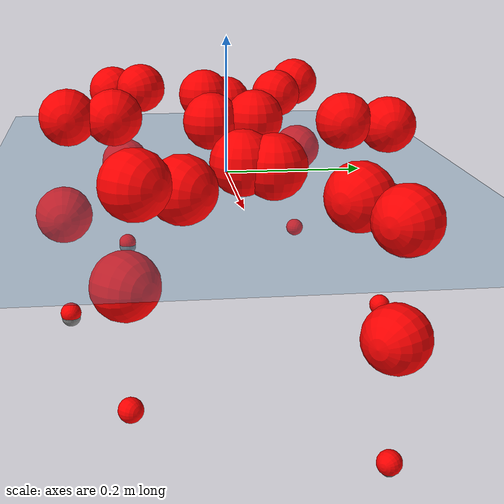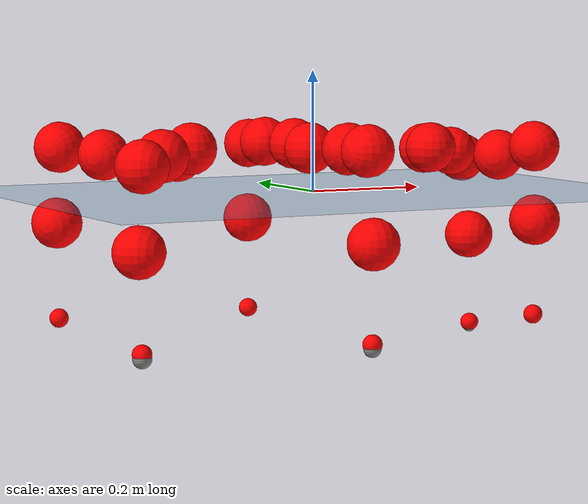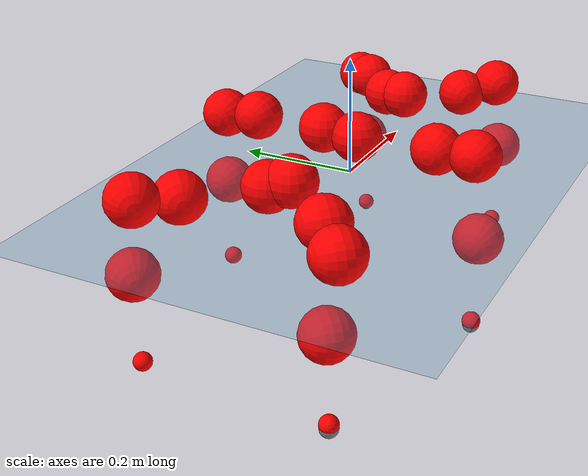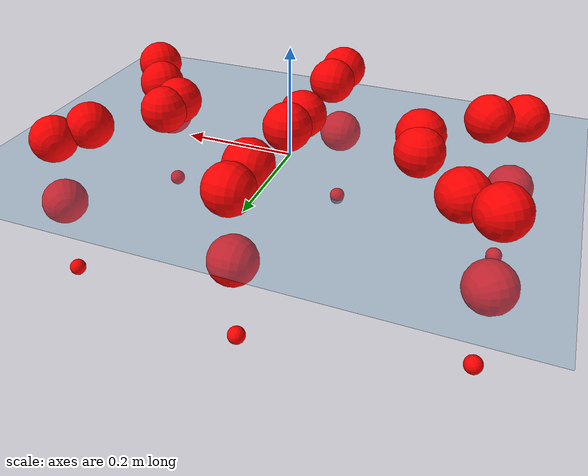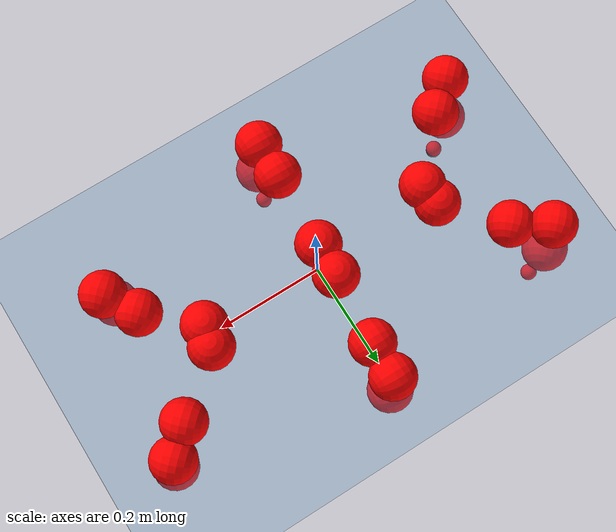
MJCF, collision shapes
<mujoco model="Golem">
  <compiler angle="radian" assetdir="assets" balanceinertia="true" inertiafromgeom="false"/>

  <option timestep="0.005" density="1.2" viscosity="2e-05"/>

  <size nkey="1"/>

  <visual>
    <quality shadowsize="8192"/>
    <map shadowclip="0.5"/>
  </visual>

  <default>
    <default class="/">
      <joint armature="0.01" damping="0.01" frictionloss="0.01"/>
      <geom contype="0" conaffinity="0" group="1" solref="-1000 -80"/>
      <site size="0.01 0.005 0.005" group="5"/>
      <general forcelimited="true" biastype="affine" gainprm="25" biasprm="0 -25 -0.5"/>
      <default class="visual">
        <geom type="mesh" group="2"/>
      </default>
      <default class="collision">
        <geom group="3"/>
      </default>
      <default class="foot">
        <geom size="0.01 0 0" condim="6" group="4" priority="1" solimp="0.015 1 0.01"/>
      </default>
      <default class="reward_collision_sphere">
        <geom group="5" rgba="1 0 0 1"/>
      </default>
    </default>
  </default>

  <asset>
    <texture type="skybox" colorspace="auto" name="//unnamed_texture_0" builtin="gradient" rgb1="0.95 0.95 0.95" rgb2="0.95 0.95 0.95" width="100" height="600"/>
    <texture type="2d" colorspace="auto" name="texplane" builtin="checker" rgb1="0.345 0.575 0.748" rgb2="0.345 0.575 0.748" markrgb="1 1 1" width="512" height="512"/>
    <material name="MatPlane" class="/" texture="texplane" texuniform="true" texrepeat="2 2" specular="0.9"/>
    <mesh name="body" class="/" file="body.stl" scale="0.001 0.001 0.001"/>
    <mesh name="coxa" class="/" file="coxa.stl" scale="0.001 0.001 0.001"/>
    <mesh name="femur" class="/" file="femur.stl" scale="0.001 0.001 0.001"/>
    <mesh name="tibia" class="/" file="tibia.stl" scale="0.001 0.001 0.001"/>
    <mesh name="tarsus" class="/" file="tarsus.stl" scale="0.001 0.001 0.001"/>
  </asset>

  <worldbody>
    <geom name="floor" class="/" size="100 100 0.125" type="plane" group="0" material="MatPlane"/>
    <light name="toplight_shadow" class="/" pos="0 0 5" dir="0.0990148 0.0990148 -0.990148" type="directional" ambient="0.04 0.04 0.04" diffuse="0.55 0.55 0.55" specular="0.12 0.12 0.12"/>
    <light name="toplight_fill" class="/" pos="0 0 5" dir="0.0990148 0.0990148 -0.990148" type="directional" castshadow="false" ambient="0.04 0.04 0.04" diffuse="0.3 0.3 0.3" specular="0.08 0.08 0.08"/>
    <body name="trunk" pos="6.39682e-05 0.0040211 0.0105114" quat="0.99998 0.00316111 0.000707023 -0.00535697">
      <inertial pos="-0.00756748 0.00757812 -0.0108625" quat="0.999475 0.0183784 0.0212805 0.0160999" mass="5.62558" diaginertia="0.0799944 0.00111075 0.0141918"/>
      <joint name="//unnamed_joint_0" type="free"/>
      <geom name="//unnamed_geom_1" class="/" pos="0 0 0.0688061" quat="1 0 0 0" type="mesh" rgba="0.9 0.9 0.9 1" mesh="body"/>
      <site name="imu" class="/" pos="0.219274 -0.0645124 0.0282898" size="0.0105541"/>
      <camera name="track" class="/" pos="0 -1.23732 0" quat="0.707107 0.707107 0 0" mode="trackcom"/>
      <camera name="ego_camera" class="/" pos="0.191423 0 0.107509" quat="-0.5 -0.5 0.5 0.5"/>
      <body name="coxa_RR" pos="-0.258646 -0.0490195 0.0675132" quat="0.377603 0.00592459 -0.00104102 -0.925948">
        <inertial pos="-0.0116795 -0.00622305 0.00940513" quat="0.999219 0.0232001 -0.00299565 0.0318609" mass="0.209537" diaginertia="0.0796345 0.000800311 0.0121664"/>
        <joint name="coxa_joint_RR" class="/" pos="0 0 0" axis="-0.0110346 -0.0348213 -0.999333" range="-3.29505 3.26232" armature="0.00914115" damping="0.0308674" frictionloss="0.00679324"/>
        <geom name="//unnamed_geom_2" class="/" type="mesh" rgba="0.2 0.2 0.2 1" mesh="coxa"/>
        <geom name="//unnamed_geom_3" class="reward_collision_sphere" size="0.0422165" pos="-0.0441746 0 0"/>
        <body name="femur_RR" pos="0.0972949 0.00800254 -1.38862e-05" quat="0.503524 -0.496661 0.496019 0.503743">
          <inertial pos="0.000728352 -0.0156079 -0.00909551" quat="0.998673 -0.0150161 -0.0437183 -0.0226956" mass="0.267458" diaginertia="0.0710539 0.00117057 0.016628"/>
          <joint name="femur_joint_RR" class="/" pos="0 0 0" axis="-0.0187296 0.00369665 -0.999818" range="-3.26864 3.2693" armature="0.00422299" damping="0" frictionloss="0.0109874"/>
          <geom name="//unnamed_geom_4" class="/" type="mesh" rgba="0.9 0.9 0.9 1" mesh="femur"/>
          <geom name="//unnamed_geom_5" class="reward_collision_sphere" size="0.0422165"/>
          <body name="tibia_RR" pos="0.0101952 -0.0743292 -0.00302798" quat="6.7128e-06 1 0.000167702 0.000746388">
            <inertial pos="-0.00026813 -0.0145717 -0.00439693" quat="0.999998 0.00134646 -0.000800824 -0.00154179" mass="0.273083" diaginertia="0.0808145 0.00104589 0.0169221"/>
            <joint name="tibia_joint_RR" class="/" pos="0 0 0" axis="0.0431439 -0.0560997 0.997493" stiffness="0.0557038" range="-3.43271 3.0433" armature="0.0160224" damping="0.0482168" frictionloss="0.00185497"/>
            <geom name="//unnamed_geom_6" class="/" type="mesh" rgba="0.2 0.2 0.2 1" mesh="tibia"/>
            <geom name="//unnamed_geom_7" class="reward_collision_sphere" size="0.0422165"/>
            <body name="tarsus_RR" pos="0.133129 -0.0118983 0.0141777" quat="0.99999 -0.00358479 0.00110616 -0.00260101">
              <inertial pos="0.0802799 0.00462011 -0.0112104" quat="0.466016 0.494906 0.51657 0.520628" mass="0.277739" diaginertia="0.0769431 0.00113945 0.0133748"/>
              <joint name="tarsus_joint_RR" class="/" pos="0 0 0" axis="0.0162404 0.0498872 0.998623" range="-2.9519 3.1918" armature="0.0144111" damping="0" frictionloss="0.00877213"/>
              <geom name="//unnamed_geom_8" class="/" type="mesh" rgba="0.9 0.9 0.9 1" mesh="tarsus"/>
              <geom name="foot_1" class="foot" size="0.0155805" pos="0.164919 0 0" quat="0 -0.707107 0 0.707107"/>
              <geom name="//unnamed_geom_10" class="reward_collision_sphere" size="0.0422165"/>
              <geom name="//unnamed_geom_11" class="reward_collision_sphere" size="0.0158312" pos="0.158292 0 0"/>
              <site name="foot_1" class="foot" pos="0.164919 0 0" quat="0 -0.707107 0 0.707107" size="0.0105541"/>
            </body>
          </body>
        </body>
      </body>
      <body name="coxa_RM" pos="-0.0161323 -0.0680154 0.0633166" quat="0.707976 0.00206624 0.00101115 -0.706233">
        <inertial pos="-0.00219966 0.000526961 0.0130627" quat="0.996883 -0.00586276 0.00210462 0.0786452" mass="0.208804" diaginertia="0.0540694 0.000591224 0.00977868"/>
        <joint name="coxa_joint_RM" class="/" pos="0 0 0" axis="-0.0398072 0.0647489 -0.997107" stiffness="0.0426325" range="-3.15494 3.32057" armature="0.0135333" damping="0" frictionloss="0.0049339"/>
        <geom name="//unnamed_geom_12" class="/" type="mesh" rgba="0.2 0.2 0.2 1" mesh="coxa"/>
        <geom name="//unnamed_geom_13" class="reward_collision_sphere" size="0.0422165" pos="-0.0441746 0 0"/>
        <body name="femur_RM" pos="0.0994311 -0.00474639 0.0088858" quat="0.499886 -0.500531 0.5003 0.499283">
          <inertial pos="-0.000908563 -0.0115747 -0.000271723" quat="0.999802 -0.0133909 -0.0146197 0.00152499" mass="0.208825" diaginertia="0.0809352 0.000922928 0.0159741"/>
          <joint name="femur_joint_RM" class="/" pos="0 0 0" axis="0.000799017 0.00399562 -0.999992" stiffness="0.0595011" range="-3.39106 2.96445" armature="0.00485018" damping="0.0086515" frictionloss="0.00327429"/>
          <geom name="//unnamed_geom_14" class="/" type="mesh" rgba="0.9 0.9 0.9 1" mesh="femur"/>
          <geom name="//unnamed_geom_15" class="reward_collision_sphere" size="0.0422165"/>
          <body name="tibia_RM" pos="-0.00163439 -0.0664009 -0.000909763" quat="-0.00142878 0.999999 -0.000220653 0.000151545">
            <inertial pos="-0.00219495 0.000520699 -0.0120084" quat="0.999741 0.00294924 -0.0180646 -0.01351" mass="0.193063" diaginertia="0.0705663 0.000909363 0.0159947"/>
            <joint name="tibia_joint_RM" class="/" pos="0 0 0" axis="0.0607899 -0.0393315 0.997375" range="-3.29303 2.91922" armature="0.0184352" damping="0.00130698" frictionloss="0.00290132"/>
            <geom name="//unnamed_geom_16" class="/" type="mesh" rgba="0.2 0.2 0.2 1" mesh="tibia"/>
            <geom name="//unnamed_geom_17" class="reward_collision_sphere" size="0.0422165"/>
            <body name="tarsus_RM" pos="0.146001 0.013007 -0.00489157" quat="0.999984 -0.00387217 0.000579498 -0.00409472">
              <inertial pos="0.0886495 0.00320219 -0.000747302" quat="0.500966 0.50113 0.496383 0.501504" mass="0.164003" diaginertia="0.0581646 0.000743866 0.0117049"/>
              <joint name="tarsus_joint_RM" class="/" pos="0 0 0" axis="0.0215689 0.0304461 0.999304" range="-3.281 3.23345" armature="0.0149227" damping="0" frictionloss="0.00786524"/>
              <geom name="//unnamed_geom_18" class="/" type="mesh" rgba="0.9 0.9 0.9 1" mesh="tarsus"/>
              <geom name="foot_2" class="foot" size="0.014526" pos="0.164919 0 0" quat="0 -0.707107 0 0.707107"/>
              <geom name="//unnamed_geom_20" class="reward_collision_sphere" size="0.0422165"/>
              <geom name="//unnamed_geom_21" class="reward_collision_sphere" size="0.0158312" pos="0.158292 0 0"/>
              <site name="foot_2" class="foot" pos="0.164919 0 0" quat="0 -0.707107 0 0.707107" size="0.0105541"/>
            </body>
          </body>
        </body>
      </body>
      <body name="coxa_RF" pos="0.254461 -0.0366928 0.0566606" quat="0.923834 -5.18324e-05 -0.000269408 -0.382793">
        <inertial pos="0.0148594 -0.00253344 0.0119227" quat="0.998695 -0.0495231 -0.000113476 0.0124928" mass="0.221845" diaginertia="0.0546456 0.000686162 0.0118804"/>
        <joint name="coxa_joint_RF" class="/" pos="0 0 0" axis="0.0141259 -0.0207078 -0.999686" stiffness="0.0613071" range="-3.18525 3.34557" armature="0.0125229" damping="0" frictionloss="0.00318904"/>
        <geom name="//unnamed_geom_22" class="/" type="mesh" rgba="0.2 0.2 0.2 1" mesh="coxa"/>
        <geom name="//unnamed_geom_23" class="reward_collision_sphere" size="0.0422165" pos="-0.0441746 0 0"/>
        <body name="femur_RF" pos="0.0731658 0.00332348 -0.00948488" quat="0.50367 -0.496659 0.502517 0.497116">
          <inertial pos="-0.00371084 -0.00113332 0.0052066" quat="0.998928 0.0441329 -0.00852888 -0.0111053" mass="0.226426" diaginertia="0.0772902 0.00106329 0.0162535"/>
          <joint name="femur_joint_RF" class="/" pos="0 0 0" axis="-0.0214455 0.0262426 -0.999426" range="-3.30502 3.14867" armature="0.00841308" damping="0.0152755" frictionloss="0.00884945"/>
          <geom name="//unnamed_geom_24" class="/" type="mesh" rgba="0.9 0.9 0.9 1" mesh="femur"/>
          <geom name="//unnamed_geom_25" class="reward_collision_sphere" size="0.0422165"/>
          <body name="tibia_RF" pos="-0.016707 -0.0639591 -0.0129323" quat="-0.00217976 0.999993 0.0025695 0.00136026">
            <inertial pos="-0.00130953 0.0142781 0.0124446" quat="0.99762 0.0244303 -0.0218298 -0.060673" mass="0.254936" diaginertia="0.0906075 0.0011561 0.0139602"/>
            <joint name="tibia_joint_RF" class="/" pos="0 0 0" axis="-0.0575834 -0.0372839 0.997644" stiffness="0.0802714" range="-2.96568 3.09936" armature="0.00960868" damping="0.0407147" frictionloss="0.0157634"/>
            <geom name="//unnamed_geom_26" class="/" type="mesh" rgba="0.2 0.2 0.2 1" mesh="tibia"/>
            <geom name="//unnamed_geom_27" class="reward_collision_sphere" size="0.0422165"/>
            <body name="tarsus_RF" pos="0.121508 0.00634624 0.0153203" quat="1 0.000111885 -0.000148345 6.98989e-05">
              <inertial pos="0.0831943 -0.00409571 0.00285146" quat="0.490772 0.479156 0.502831 0.526036" mass="0.253414" diaginertia="0.084426 0.00116257 0.0151188"/>
              <joint name="tarsus_joint_RF" class="/" pos="0 0 0" axis="-0.0348844 0.0712468 0.996849" range="-3.06558 3.23551" armature="0.0144364" damping="0.0116352" frictionloss="0.00553061"/>
              <geom name="//unnamed_geom_28" class="/" type="mesh" rgba="0.9 0.9 0.9 1" mesh="tarsus"/>
              <geom name="foot_3" class="foot" size="0.0071723" pos="0.164919 0 0" quat="0 -0.707107 0 0.707107"/>
              <geom name="//unnamed_geom_30" class="reward_collision_sphere" size="0.0422165"/>
              <geom name="//unnamed_geom_31" class="reward_collision_sphere" size="0.0158312" pos="0.158292 0 0"/>
              <site name="foot_3" class="foot" pos="0.164919 0 0" quat="0 -0.707107 0 0.707107" size="0.0105541"/>
            </body>
          </body>
        </body>
      </body>
      <body name="coxa_LR" pos="-0.266277 0.0496897 0.053936" quat="0.379801 -0.00470184 0.0036021 0.925049">
        <inertial pos="0.00871574 -0.0125292 0.0132532" quat="0.999731 0.0036948 -0.0228079 -0.00180217" mass="0.227707" diaginertia="0.0705957 0.000972262 0.0134968"/>
        <joint name="coxa_joint_LR" class="/" pos="0 0 0" axis="0.00582997 -0.0593043 -0.998223" range="-2.97494 2.85719" armature="0.0105222" damping="0" frictionloss="0.00454597"/>
        <geom name="//unnamed_geom_32" class="/" type="mesh" rgba="0.2 0.2 0.2 1" mesh="coxa"/>
        <geom name="//unnamed_geom_33" class="reward_collision_sphere" size="0.0422165" pos="-0.0441746 0 0"/>
        <body name="femur_LR" pos="0.0888188 -0.00915905 -0.00135972" quat="0.498764 -0.497998 0.502846 0.500378">
          <inertial pos="-0.00285674 -0.0112784 -0.0063972" quat="0.997213 0.0410488 -0.00871545 0.0616876" mass="0.276491" diaginertia="0.0628328 0.00104132 0.0173219"/>
          <joint name="femur_joint_LR" class="/" pos="0 0 0" axis="0.0817302 0.0213974 0.996425" range="-2.96867 2.99299" armature="0.00263346" damping="0" frictionloss="0.0100523"/>
          <geom name="//unnamed_geom_34" class="/" type="mesh" rgba="0.9 0.9 0.9 1" mesh="femur"/>
          <geom name="//unnamed_geom_35" class="reward_collision_sphere" size="0.0422165"/>
          <body name="tibia_LR" pos="-0.0128119 -0.0724419 0.0117493" quat="0.00269517 0.999994 -0.00010536 -0.00211887">
            <inertial pos="0.00894937 -0.00679181 -0.0123102" quat="0.998466 -0.0247308 -0.0436936 0.0233595" mass="0.182102" diaginertia="0.0611512 0.000761227 0.014747"/>
            <joint name="tibia_joint_LR" class="/" pos="0 0 0" axis="0.00457569 0.00931354 -0.999946" range="-3.43884 2.90961" armature="0.0176676" damping="0" frictionloss="0.0107056"/>
            <geom name="//unnamed_geom_36" class="/" type="mesh" rgba="0.2 0.2 0.2 1" mesh="tibia"/>
            <geom name="//unnamed_geom_37" class="reward_collision_sphere" size="0.0422165"/>
            <body name="tarsus_LR" pos="0.125565 0.00916579 0.00352464" quat="1 6.85578e-06 -0.000137654 0.000105988">
              <inertial pos="0.0902401 0.0135197 -0.00450161" quat="0.49638 0.500049 0.501698 0.501854" mass="0.300043" diaginertia="0.0746513 0.000780273 0.0137696"/>
              <joint name="tarsus_joint_LR" class="/" pos="0 0 0" axis="-0.00420053 -0.00144823 -0.99999" range="-3.04507 2.93797" armature="0.0112422" damping="0.0407281" frictionloss="0.0157537"/>
              <geom name="//unnamed_geom_38" class="/" type="mesh" rgba="0.9 0.9 0.9 1" mesh="tarsus"/>
              <geom name="foot_4" class="foot" size="0.00664667" pos="0.164919 0 0" quat="0.707107 0 -0.707107 0"/>
              <geom name="//unnamed_geom_40" class="reward_collision_sphere" size="0.0422165"/>
              <geom name="//unnamed_geom_41" class="reward_collision_sphere" size="0.0158312" pos="0.158292 0 0"/>
              <site name="foot_4" class="foot" pos="0.164919 0 0" quat="0.707107 0 -0.707107 0" size="0.0105541"/>
            </body>
          </body>
        </body>
      </body>
      <body name="coxa_LM" pos="-0.0126283 0.0837091 0.066801" quat="0.708753 -0.000707544 0.00134933 0.705455">
        <inertial pos="1.61597e-05 -0.0015226 0.0147053" quat="0.999764 -0.0139207 0.0114082 0.0121561" mass="0.238501" diaginertia="0.0575055 0.000844182 0.0132472"/>
        <joint name="coxa_joint_LM" class="/" pos="0 0 0" axis="0.0458894 -0.0085201 -0.99891" range="-3.05519 3.16235" armature="0.0067169" damping="0.064939" frictionloss="0.0103152"/>
        <geom name="//unnamed_geom_42" class="/" type="mesh" rgba="0.2 0.2 0.2 1" mesh="coxa"/>
        <geom name="//unnamed_geom_43" class="reward_collision_sphere" size="0.0422165" pos="-0.0441746 0 0"/>
        <body name="femur_LM" pos="0.0888193 -0.00921468 -0.00505847" quat="0.500019 -0.500372 0.500393 0.499216">
          <inertial pos="0.011555 0.00224335 0.0161737" quat="0.998275 -0.00687424 -0.0326387 -0.0483097" mass="0.24598" diaginertia="0.0760612 0.00095809 0.0155845"/>
          <joint name="femur_joint_LM" class="/" pos="0 0 0" axis="0.0215304 -0.0412653 0.998916" range="-3.24829 3.45429" armature="0.0153512" damping="0.0101483" frictionloss="0.0173856"/>
          <geom name="//unnamed_geom_44" class="/" type="mesh" rgba="0.9 0.9 0.9 1" mesh="femur"/>
          <geom name="//unnamed_geom_45" class="reward_collision_sphere" size="0.0422165"/>
          <body name="tibia_LM" pos="0.00704545 -0.0662693 -0.000672439" quat="-0.0033788 0.99999 0.001546 -0.00239803">
            <inertial pos="-0.00809321 -0.000557116 -0.000274311" quat="0.999789 -0.00767411 -0.0163208 0.00981263" mass="0.250199" diaginertia="0.0839958 0.00109219 0.0172806"/>
            <joint name="tibia_joint_LM" class="/" pos="0 0 0" axis="-0.0433323 0.0479686 -0.997908" range="-3.39215 3.31965" armature="0.00211852" damping="0.0425711" frictionloss="0.00395153"/>
            <geom name="//unnamed_geom_46" class="/" type="mesh" rgba="0.2 0.2 0.2 1" mesh="tibia"/>
            <geom name="//unnamed_geom_47" class="reward_collision_sphere" size="0.0422165"/>
            <body name="tarsus_LM" pos="0.130372 0.00097826 -0.00185795" quat="1 -6.85508e-07 8.51452e-07 3.4389e-08">
              <inertial pos="0.0966405 0.00762964 -0.000403611" quat="0.503279 0.532521 0.470599 0.491598" mass="0.286743" diaginertia="0.0893454 0.00132179 0.0188255"/>
              <joint name="tarsus_joint_LM" class="/" pos="0 0 0" axis="-0.00907298 0.0480034 -0.998806" range="-3.1507 3.12907" armature="0.0135144" damping="0" frictionloss="0.00232135"/>
              <geom name="//unnamed_geom_48" class="/" type="mesh" rgba="0.9 0.9 0.9 1" mesh="tarsus"/>
              <geom name="foot_5" class="foot" size="0.00676962" pos="0.164919 0 0" quat="0.707107 0 -0.707107 0"/>
              <geom name="//unnamed_geom_50" class="reward_collision_sphere" size="0.0422165"/>
              <geom name="//unnamed_geom_51" class="reward_collision_sphere" size="0.0158312" pos="0.158292 0 0"/>
              <site name="foot_5" class="foot" pos="0.164919 0 0" quat="0.707107 0 -0.707107 0" size="0.0105541"/>
            </body>
          </body>
        </body>
      </body>
      <body name="coxa_LF" pos="0.262874 0.064098 0.052524" quat="0.92344 -0.00268487 -0.00143641 0.38373">
        <inertial pos="0.0145374 0.0162766 0.0110618" quat="0.999535 -0.0299767 0.00429126 0.00368896" mass="0.274293" diaginertia="0.0797501 0.00125619 0.0140878"/>
        <joint name="coxa_joint_LF" class="/" pos="0 0 0" axis="0.0541201 0.048627 -0.99735" stiffness="0.00682765" range="-2.94924 3.15714" armature="0.00750422" damping="0" frictionloss="0.0168122"/>
        <geom name="//unnamed_geom_52" class="/" type="mesh" rgba="0.2 0.2 0.2 1" mesh="coxa"/>
        <geom name="//unnamed_geom_53" class="reward_collision_sphere" size="0.0422165" pos="-0.0441746 0 0"/>
        <body name="femur_LF" pos="0.0882251 -0.0140078 -0.0134729" quat="0.497227 -0.498641 0.504823 0.499276">
          <inertial pos="0.000945627 0.00979706 -0.00636175" quat="0.99999 -0.00246153 0.0028787 -0.00230033" mass="0.253151" diaginertia="0.0962122 0.0010654 0.016865"/>
          <joint name="femur_joint_LF" class="/" pos="0 0 0" axis="-0.00604627 -0.0706037 0.997486" range="-2.96962 2.89646" armature="0.00799816" damping="0.000891553" frictionloss="0.01104"/>
          <geom name="//unnamed_geom_54" class="/" type="mesh" rgba="0.9 0.9 0.9 1" mesh="femur"/>
          <geom name="//unnamed_geom_55" class="reward_collision_sphere" size="0.0422165"/>
          <body name="tibia_LF" pos="0.0151939 -0.0646168 -0.00235337" quat="0.000690604 0.999989 -0.00361146 -0.00274176">
            <inertial pos="-0.0101007 -0.0139839 0.0090824" quat="0.999935 0.0112677 -0.00117033 0.00140403" mass="0.218753" diaginertia="0.083983 0.000983966 0.0172144"/>
            <joint name="tibia_joint_LF" class="/" pos="0 0 0" axis="0.00501697 0.0526075 -0.998603" stiffness="0.0716232" range="-3.18489 3.38313" armature="0.0139247" damping="0.0512731" frictionloss="0.00748044"/>
            <geom name="//unnamed_geom_56" class="/" type="mesh" rgba="0.2 0.2 0.2 1" mesh="tibia"/>
            <geom name="//unnamed_geom_57" class="reward_collision_sphere" size="0.0422165"/>
            <body name="tarsus_LF" pos="0.138212 0.000892456 0.0120141" quat="1 -3.35592e-05 0.00019363 -0.000115111">
              <inertial pos="0.104872 -0.00512168 0.00580705" quat="0.469176 0.525127 0.44765 0.551112" mass="0.255895" diaginertia="0.0667794 0.00089353 0.0147963"/>
              <joint name="tarsus_joint_LF" class="/" pos="0 0 0" axis="-0.0819117 0.0214912 -0.996408" range="-3.31239 3.36542" armature="0.0116168" damping="0.0651729" frictionloss="0.0149591"/>
              <geom name="//unnamed_geom_58" class="/" type="mesh" rgba="0.9 0.9 0.9 1" mesh="tarsus"/>
              <geom name="foot_6" class="foot" size="0.011093" pos="0.164919 0 0" quat="0.707107 0 -0.707107 0"/>
              <geom name="//unnamed_geom_60" class="reward_collision_sphere" size="0.0422165"/>
              <geom name="//unnamed_geom_61" class="reward_collision_sphere" size="0.0158312" pos="0.158292 0 0"/>
              <site name="foot_6" class="foot" pos="0.164919 0 0" quat="0.707107 0 -0.707107 0" size="0.0105541"/>
            </body>
          </body>
        </body>
      </body>
    </body>
  </worldbody>

  <contact>
    <pair class="/" geom1="floor" geom2="foot_1" name="//unnamed_contact_0"/>
    <pair class="/" geom1="floor" geom2="foot_2" name="//unnamed_contact_1"/>
    <pair class="/" geom1="floor" geom2="foot_3" name="//unnamed_contact_2"/>
    <pair class="/" geom1="floor" geom2="foot_4" name="//unnamed_contact_3"/>
    <pair class="/" geom1="floor" geom2="foot_5" name="//unnamed_contact_4"/>
    <pair class="/" geom1="floor" geom2="foot_6" name="//unnamed_contact_5"/>
  </contact>

  <actuator>
    <general name="coxa_joint_RR" class="/" joint="coxa_joint_RR" forcerange="-7.47009 7.47009" gainprm="24.264" biasprm="0 -24.264 -0.433005"/>
    <general name="femur_joint_RR" class="/" joint="femur_joint_RR" forcerange="-6.04676 6.04676" gainprm="24.264" biasprm="0 -24.264 -0.433005"/>
    <general name="tibia_joint_RR" class="/" joint="tibia_joint_RR" forcerange="-7.67697 7.67697" gainprm="24.264" biasprm="0 -24.264 -0.433005"/>
    <general name="tarsus_joint_RR" class="/" joint="tarsus_joint_RR" forcerange="-4.08876 4.08876" gainprm="24.264" biasprm="0 -24.264 -0.433005"/>
    <general name="coxa_joint_RM" class="/" joint="coxa_joint_RM" forcerange="-9.84319 9.84319" gainprm="24.264" biasprm="0 -24.264 -0.433005"/>
    <general name="femur_joint_RM" class="/" joint="femur_joint_RM" forcerange="-4.05816 4.05816" gainprm="24.264" biasprm="0 -24.264 -0.433005"/>
    <general name="tibia_joint_RM" class="/" joint="tibia_joint_RM" forcerange="-5.94851 5.94851" gainprm="24.264" biasprm="0 -24.264 -0.433005"/>
    <general name="tarsus_joint_RM" class="/" joint="tarsus_joint_RM" forcerange="-5.4429 5.4429" gainprm="24.264" biasprm="0 -24.264 -0.433005"/>
    <general name="coxa_joint_RF" class="/" joint="coxa_joint_RF" forcerange="-11.3106 11.3106" gainprm="24.264" biasprm="0 -24.264 -0.433005"/>
    <general name="femur_joint_RF" class="/" joint="femur_joint_RF" forcerange="-6.67506 6.67506" gainprm="24.264" biasprm="0 -24.264 -0.433005"/>
    <general name="tibia_joint_RF" class="/" joint="tibia_joint_RF" forcerange="-5.72536 5.72536" gainprm="24.264" biasprm="0 -24.264 -0.433005"/>
    <general name="tarsus_joint_RF" class="/" joint="tarsus_joint_RF" forcerange="-6.55838 6.55838" gainprm="24.264" biasprm="0 -24.264 -0.433005"/>
    <general name="coxa_joint_LR" class="/" joint="coxa_joint_LR" forcerange="-7.6599 7.6599" gainprm="24.264" biasprm="0 -24.264 -0.433005"/>
    <general name="femur_joint_LR" class="/" joint="femur_joint_LR" forcerange="-7.44601 7.44601" gainprm="24.264" biasprm="0 -24.264 -0.433005"/>
    <general name="tibia_joint_LR" class="/" joint="tibia_joint_LR" forcerange="-8.50985 8.50985" gainprm="24.264" biasprm="0 -24.264 -0.433005"/>
    <general name="tarsus_joint_LR" class="/" joint="tarsus_joint_LR" forcerange="-7.21254 7.21254" gainprm="24.264" biasprm="0 -24.264 -0.433005"/>
    <general name="coxa_joint_LM" class="/" joint="coxa_joint_LM" forcerange="-9.10719 9.10719" gainprm="24.264" biasprm="0 -24.264 -0.433005"/>
    <general name="femur_joint_LM" class="/" joint="femur_joint_LM" forcerange="-8.98234 8.98234" gainprm="24.264" biasprm="0 -24.264 -0.433005"/>
    <general name="tibia_joint_LM" class="/" joint="tibia_joint_LM" forcerange="-7.92743 7.92743" gainprm="24.264" biasprm="0 -24.264 -0.433005"/>
    <general name="tarsus_joint_LM" class="/" joint="tarsus_joint_LM" forcerange="-5.51159 5.51159" gainprm="24.264" biasprm="0 -24.264 -0.433005"/>
    <general name="coxa_joint_LF" class="/" joint="coxa_joint_LF" forcerange="-10.3217 10.3217" gainprm="24.264" biasprm="0 -24.264 -0.433005"/>
    <general name="femur_joint_LF" class="/" joint="femur_joint_LF" forcerange="-7.92427 7.92427" gainprm="24.264" biasprm="0 -24.264 -0.433005"/>
    <general name="tibia_joint_LF" class="/" joint="tibia_joint_LF" forcerange="-7.72795 7.72795" gainprm="24.264" biasprm="0 -24.264 -0.433005"/>
    <general name="tarsus_joint_LF" class="/" joint="tarsus_joint_LF" forcerange="-7.84555 7.84555" gainprm="24.264" biasprm="0 -24.264 -0.433005"/>
  </actuator>

  <sensor>
    <gyro site="imu" name="imu_angular_velocity"/>
    <velocimeter site="imu" name="imu_linear_velocity"/>
    <framelinvel objtype="site" objname="foot_1" name="foot_1_global_linear_velocity"/>
    <framelinvel objtype="site" objname="foot_2" name="foot_2_global_linear_velocity"/>
    <framelinvel objtype="site" objname="foot_3" name="foot_3_global_linear_velocity"/>
    <framelinvel objtype="site" objname="foot_4" name="foot_4_global_linear_velocity"/>
    <framelinvel objtype="site" objname="foot_5" name="foot_5_global_linear_velocity"/>
    <framelinvel objtype="site" objname="foot_6" name="foot_6_global_linear_velocity"/>
  </sensor>

  <keyframe>
    <key name="home" qpos="0 0 0.1457 1 0 0 0 0 0 0 0 0 0 0 0 0 0 0 0 0 0 0 0 0 0 0 0 0 0 0 0"/>
  </keyframe>
</mujoco>
